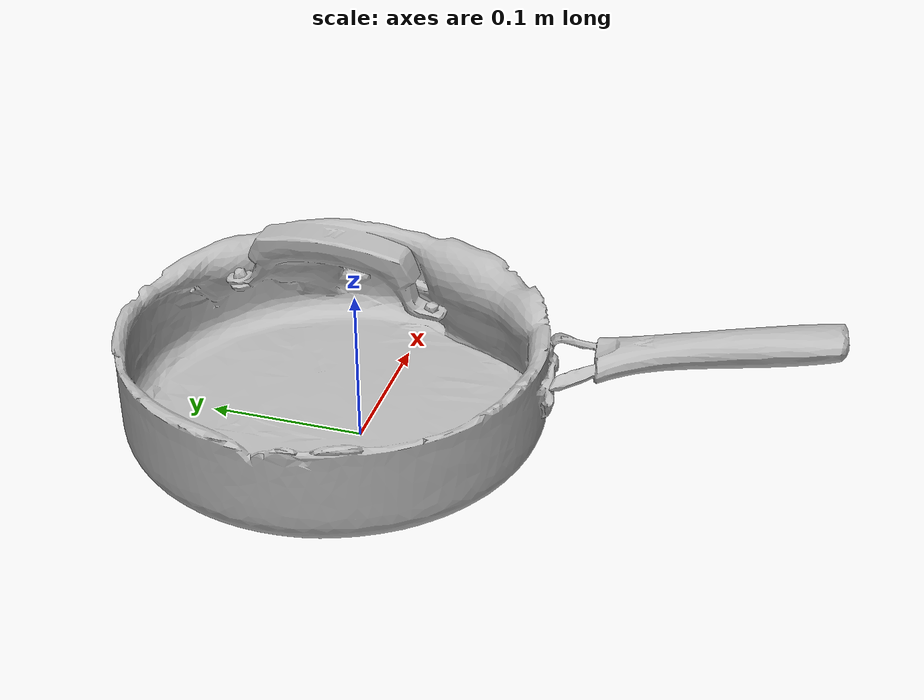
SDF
<?xml version="1.0" ?>
<sdf version='1.8'>
  <model name='ycb_027_skillet'>
    <link name='body'>
      <inertial>
        <mass>0.95</mass>
        <pose>0.0270524272 -0.0134559113 0.0471213513 0 0 0</pose>
        <inertia>
          <ixx>0.0103237057941</ixx>
          <ixy>0.000765923528829</ixy>
          <ixz>-0.000298767107818</ixz>
          <iyy>0.00603076949646</iyy>
          <iyz>0.00066794451963</iyz>
          <izz>0.0143210435031</izz>
        </inertia>
      </inertial>
      <visual name='ycb_027_skillet_visual'>
        <pose>0.033816 -0.037967 0.008805 0 0 0</pose>
        <geometry>
          <mesh>
            <uri>model://ycb_027_skillet/meshes/textured.dae</uri>
          </mesh>
        </geometry>
      </visual>
      <collision name='ycb_027_skillet_collision'>
        <pose>0.033816 -0.037967 0.008805 0 0 0</pose>
        <geometry>
          <mesh>
            <uri>model://ycb_027_skillet/meshes/nontextured.stl</uri>
          </mesh>
        </geometry>
        <max_contacts>10</max_contacts>
        <surface>
          <contact>
            <ode>
              <kp>1e15</kp>
              <kd>1e13</kd>
            </ode>
          </contact>
        </surface>
      </collision>
    </link>
  </model>
</sdf>
